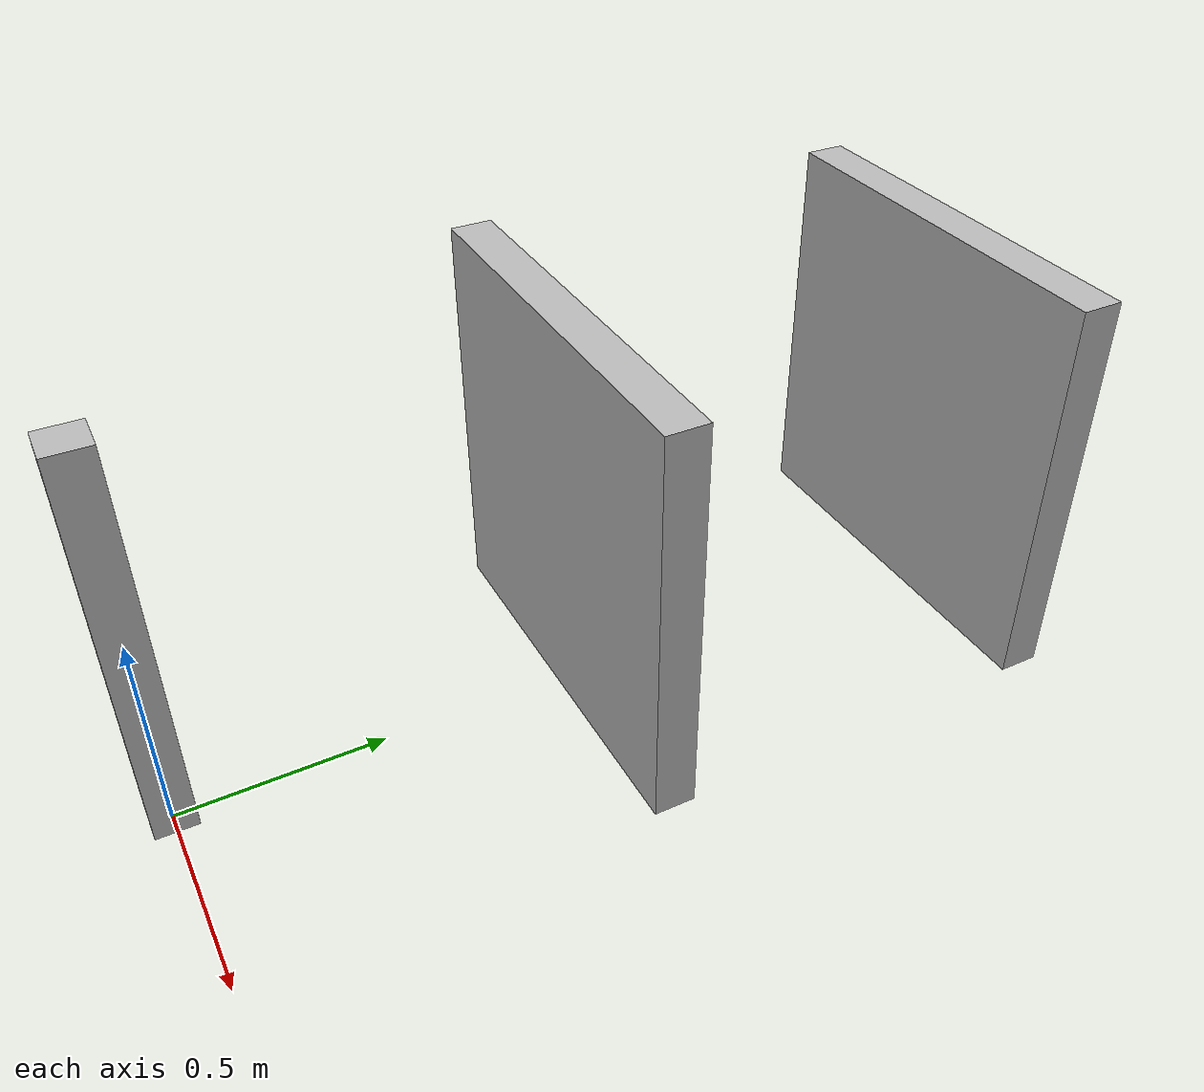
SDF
<!-- http://gazebosim.org/tutorials?tut=inertia&cat=build_robot -->
<sdf version="1.4">
  <model name="msd">
    <pose>0 0 0.5 0 0 0</pose>
    <static>false</static>

    <link name="base">
      <visual name="base_visual">
        <geometry>
          <box>
            <size>0.1 0.1 1</size>
          </box>
        </geometry>
      </visual>
    </link>

    <link name="mass1">
      <pose relative_to='base_mass1_joint'>0 1.0 0.0 0 -0 0</pose>
      <inertial>
        <mass>1.0</mass>
        <inertia>
          <ixx>0.083</ixx>
          <ixy>0.0</ixy>
          <ixz>0.0</ixz>
          <iyy>0.083</iyy>
          <iyz>0.0</iyz>
          <izz>0.083</izz>
        </inertia>
      </inertial>
      <collision name="collision">
        <geometry>
          <box>
            <size>1 0.1 1</size>
          </box>
        </geometry>
      </collision>
      <visual name="visual">
        <geometry>
          <box>
            <size>1 0.1 1</size>
          </box>
        </geometry>
      </visual>
    </link>

    <link name="mass2">
      <pose relative_to='mass1_mass2_joint'>0 1.0 0.0 0 -0 0</pose>
      <inertial>
        <mass>1.0</mass>
        <inertia>
          <ixx>0.083</ixx>
          <ixy>0.0</ixy>
          <ixz>0.0</ixz>
          <iyy>0.083</iyy>
          <iyz>0.0</iyz>
          <izz>0.083</izz>
        </inertia>
      </inertial>
      <collision name="collision">
        <geometry>
          <box>
            <size>1 0.1 1</size>
          </box>
        </geometry>
      </collision>
      <visual name="visual">
        <geometry>
          <box>
            <size>1 0.1 1</size>
          </box>
        </geometry>
      </visual>
    </link>

    <joint name="base_mass1_joint" type="prismatic">
      <pose relative_to='base'>0.0 0.0 0.0 0 0 0</pose>
      <parent>base</parent>
      <child>mass1</child>
      <axis>
        <xyz>0 1 0</xyz>
        <dynamics>
          <spring_reference>0.0</spring_reference>
          <spring_stiffness>100.0</spring_stiffness>
          <damping>0.5</damping>
        </dynamics>
        <limit>
          <lower>-1</lower>
          <upper>1</upper>
        </limit>
      </axis>
    </joint>
    <joint name="mass1_mass2_joint" type="prismatic">
      <pose relative_to='mass1'>0.0 0.0 0.0 0 0 0</pose>
      <parent>mass1</parent>
      <child>mass2</child>
      <axis>
        <xyz>0 1 0</xyz>
        <dynamics>
          <spring_reference>0.0</spring_reference>
          <spring_stiffness>100.0</spring_stiffness>
          <damping>0.5</damping>
        </dynamics>
        <limit>
          <lower>-1</lower>
          <upper>1</upper>
          <effort>1000</effort>
        </limit>
      </axis>
    </joint>
  </model>
</sdf>
